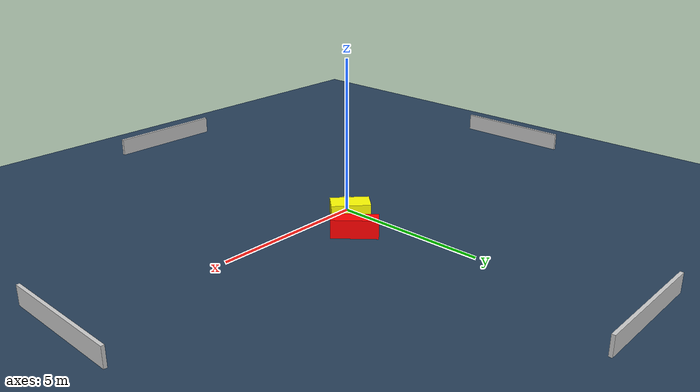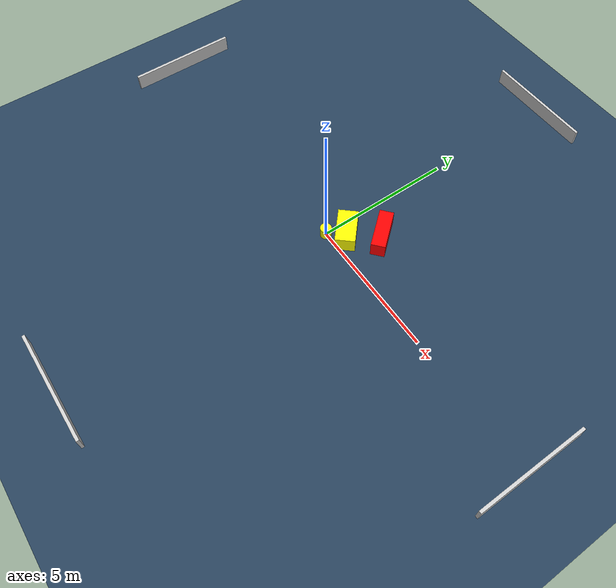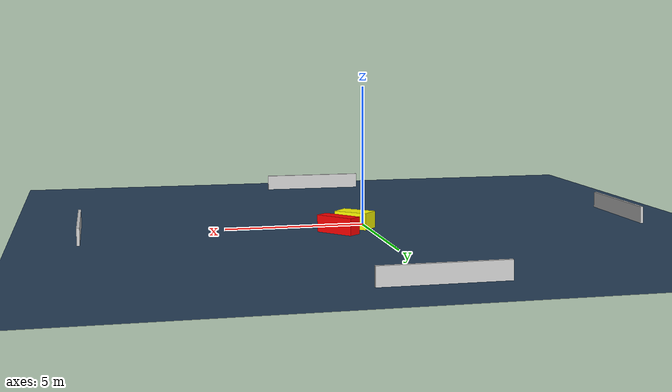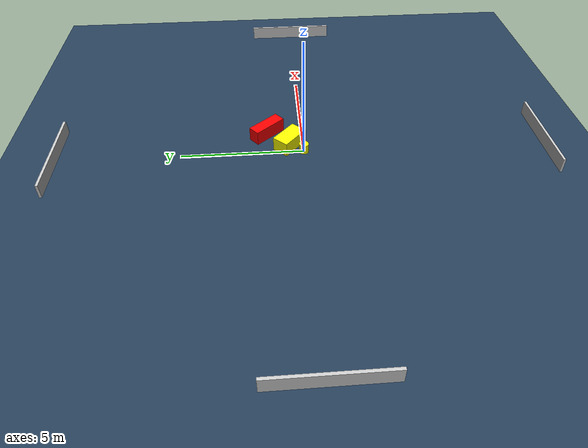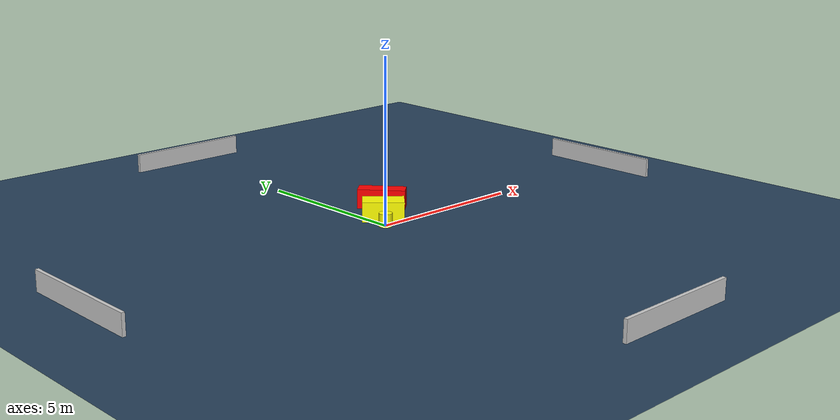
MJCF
<?xml version="1.0" ?>
<mujoco model="generated_environment">
  <option timestep="0.01" integrator="RK4" cone="elliptic"/>
  <default>
    <geom density="1"/>
  </default>
  <asset>
    <texture builtin="gradient" height="3072" name="skybox" rgb1="0.3 0.5 0.7" rgb2="0 0 0" type="skybox" width="512"/>
    <texture builtin="checker" height="300" name="groundplane" rgb1="0.2 0.3 0.4" rgb2="0.1 0.2 0.3" type="2d" width="300"/>
    <material name="groundplane" reflectance="0.2" texrepeat="5 5" texture="groundplane"/>
  </asset>
  <worldbody>
    <light dir="0 0 -1" directional="true" pos="0 0 1.5"/>
    <geom condim="3" friction="0.5 0.005 0.001" material="groundplane" name="floor" pos="0 0 0" size="0 0 0.05" type="plane"/>
    <body name="walls">
      <geom name="wall_1" condim="4" pos="-10.0 0.0 0.3" rgba="0.800000011920929 0.800000011920929 0.800000011920929 1.0" size="0.05 2.0 0.3" type="box"/>
      <geom name="wall_2" condim="4" pos="10.0 0.0 0.3" rgba="0.800000011920929 0.800000011920929 0.800000011920929 1.0" size="0.05 2.0 0.3" type="box"/>
      <geom name="wall_3" condim="4" pos="0.0 -10.0 0.3" rgba="0.800000011920929 0.800000011920929 0.800000011920929 1.0" size="2.0 0.05 0.3" type="box"/>
      <geom name="wall_4" condim="4" pos="0.0 10.0 0.3" rgba="0.800000011920929 0.800000011920929 0.800000011920929 1.0" size="2.0 0.05 0.3" type="box"/>
    </body>
    <body name="robot">
      <joint name="joint_x" type="slide" pos="0 0 0" axis="1 0 0"/>
      <joint name="joint_y" type="slide" pos="0 0 0" axis="0 1 0"/>
      <geom name="robot" type="cylinder" pos="0.0 0.0 0.2" size="0.2 0.2 0.0" mass="5.0" friction="1.0 0.005 0.0001" condim="4" rgba="1.0 1.0 0.0 1.0"/>
    </body>
    <body name="obstacle_1_movable">
      <geom name="obstacle_1_movable" condim="4" pos="0.4337647198140325 0.5608364764218101 0.3" euler="0 0 228.0852035300549" friction="0.0 0.005 0.001" rgba="1.0 1.0 0.0 1.0" size="0.35081415489137024 0.6247192435253208 0.3" type="box" mass="0.1"/>
      <joint type="free"/>
    </body>
    <body name="obstacle_2_static">
      <geom name="obstacle_2_static" condim="4" pos="1.2329272182831856 1.4812522557262777 0.3" euler="0 0 220.37877751925305" friction="0.0 0.005 0.001" rgba="1.0 0.0 0.0 1.0" size="0.25113560023281956 0.7291603852245583 0.3" type="box"/>
    </body>
  </worldbody>
  <actuator>
    <motor name="actuator_x" joint="joint_x" gear="1" ctrlrange="-1 1"/>
    <motor name="actuator_y" joint="joint_y" gear="1" ctrlrange="-1 1"/>
  </actuator>
</mujoco>
